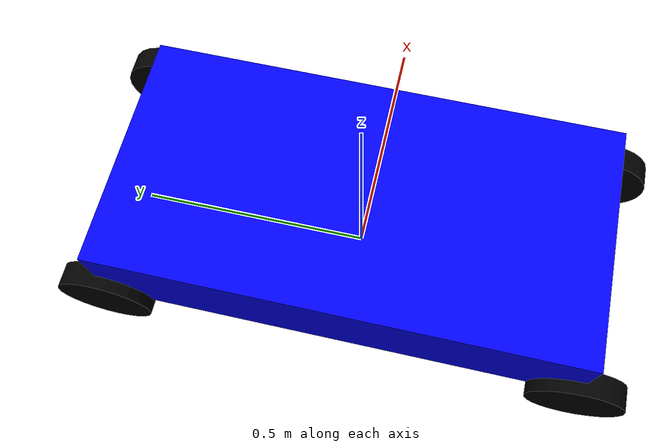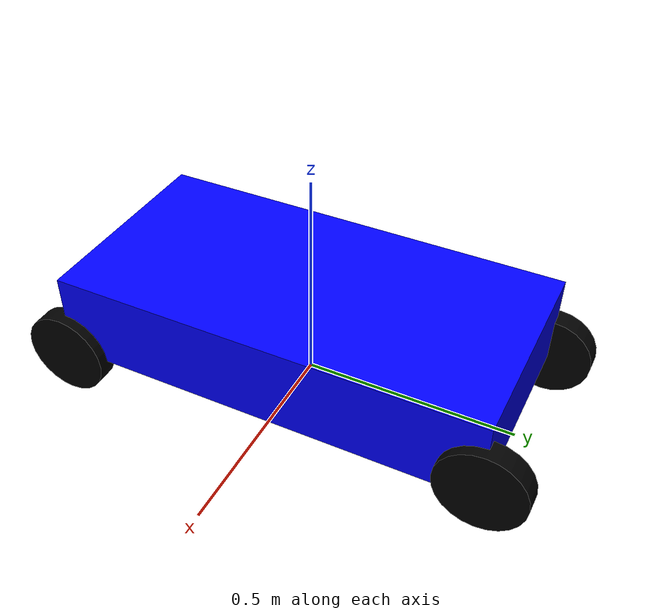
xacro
<?xml version="1.0"?>
<robot xmlns:xacro="http://www.ros.org/wiki/xacro" name="simple_car">

  <!-- Base Link -->
  <link name="base_link">
    <visual>
      <geometry>
        <box size="0.5 1.0 0.2"/>
      </geometry>
      <origin xyz="0 0 0.15" rpy="0 0 0"/>
      <material name="blue">
        <color rgba="0 0 1 1"/>
      </material>
    </visual>
  </link>

  <!-- Front Left Wheel -->
  <link name="front_left_wheel">
    <visual>
      <geometry>
        <cylinder radius="0.1" length="0.05"/>
      </geometry>
      <origin xyz="0 0 0" rpy="0 0 0"/>
      <material name="black">
        <color rgba="0 0 0 1"/>
      </material>
    </visual>
  </link>

  <!-- Front Right Wheel -->
  <link name="front_right_wheel">
    <visual>
      <geometry>
        <cylinder radius="0.1" length="0.05"/>
      </geometry>
      <origin xyz="0 0 0" rpy="0 0 0"/>
      <material name="black">
        <color rgba="0 0 0 1"/>
      </material>
    </visual>
  </link>

  <!-- Rear Left Wheel -->
  <link name="rear_left_wheel">
    <visual>
      <geometry>
        <cylinder radius="0.1" length="0.05"/>
      </geometry>
      <origin xyz="0 0 0" rpy="0 0 0"/>
      <material name="black">
        <color rgba="0 0 0 1"/>
      </material>
    </visual>
  </link>

  <!-- Rear Right Wheel -->
  <link name="rear_right_wheel">
    <visual>
      <geometry>
        <cylinder radius="0.1" length="0.05"/>
      </geometry>
      <origin xyz="0 0 0" rpy="0 0 0"/>
      <material name="black">
        <color rgba="0 0 0 1"/>
      </material>
    </visual>
  </link>

  <!-- Joints -->
  <joint name="front_left_wheel_joint" type="continuous">
    <parent link="base_link"/>
    <child link="front_left_wheel"/>
    <origin xyz="0.25 0.5 0.1" rpy="0 1.57 0"/>
    <axis xyz="0 0 1"/>
  </joint>

  <joint name="front_right_wheel_joint" type="continuous">
    <parent link="base_link"/>
    <child link="front_right_wheel"/>
    <origin xyz="0.25 -0.5 0.05" rpy="0 1.57 0"/>
    <axis xyz="0 0 1"/>
  </joint>

  <joint name="rear_left_wheel_joint" type="continuous">
    <parent link="base_link"/>
    <child link="rear_left_wheel"/>
    <origin xyz="-0.25 0.5 0.05" rpy="0 1.57 0"/>
    <axis xyz="0 0 1"/>
  </joint>

  <joint name="rear_right_wheel_joint" type="continuous">
    <parent link="base_link"/>
    <child link="rear_right_wheel"/>
    <origin xyz="-0.25 -0.5 0.05" rpy="0 1.57 0"/>
    <axis xyz="0 0 1"/>
  </joint>

</robot>
